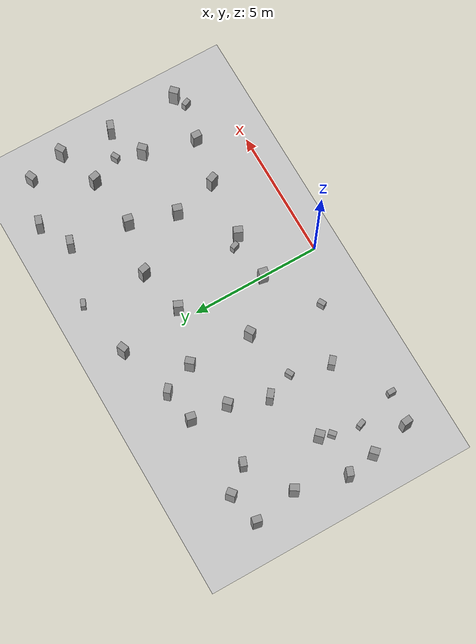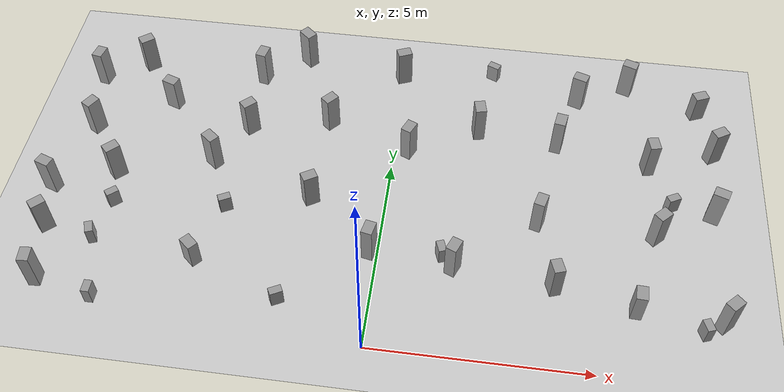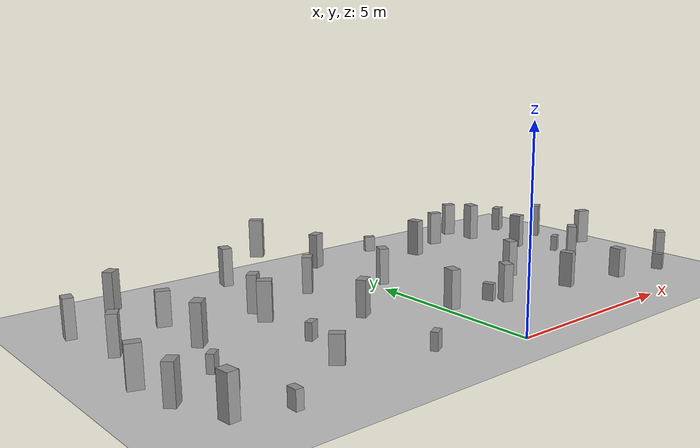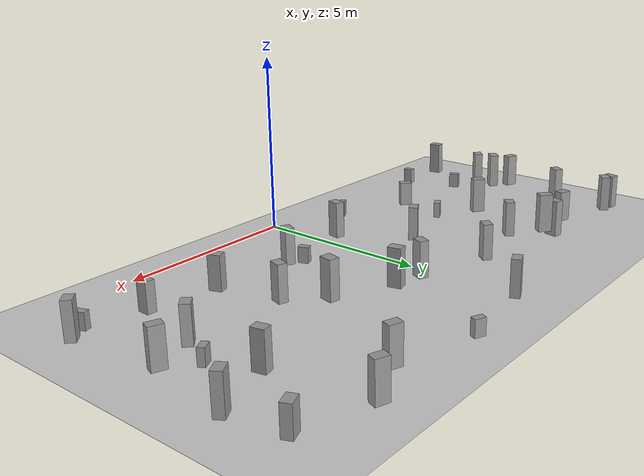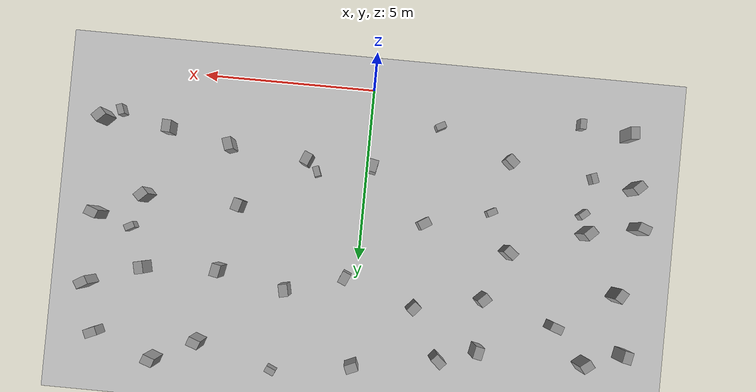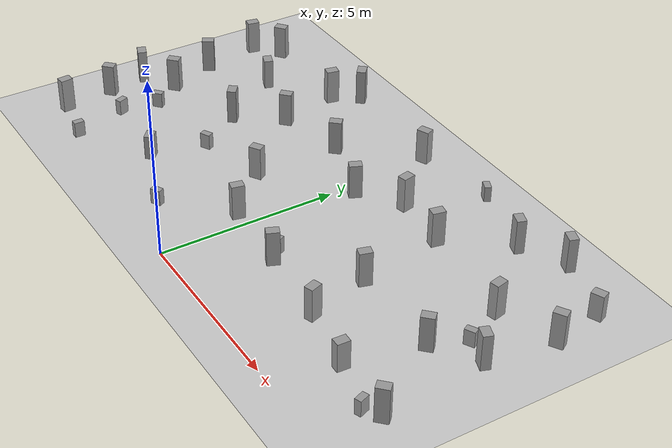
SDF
<sdf version="1.6">
 <world name="default">
  <model name="ground_plane">
   <static>1</static>
   <link name="link">
    <collision name="collision">
     <geometry><plane><normal>0 0 1</normal><size>100 100</size></plane></geometry>
     <surface><friction><ode><mu>100</mu><mu2>50</mu2></ode></friction></surface>
    </collision>
    <visual name="visual">
     <cast_shadows>0</cast_shadows>
     <geometry><plane><normal>0 0 1</normal><size>100 100</size></plane></geometry>
     <material>
      <script><uri>file://media/materials/scripts/gazebo.material</uri><name>Gazebo/Grey</name></script>
     </material>
    </visual>
   </link>
  </model>
  <model name="unit_box_0_clone_4">
   <pose>1.74493 2.24717 0.499999 -2e-06 3e-06 1.17541</pose>
   <link name="link">
    <inertial>
     <mass>1</mass>
     <inertia>
      <ixx>0.166667</ixx>
      <ixy>0</ixy>
      <ixz>0</ixz>
      <iyy>0.166667</iyy>
      <iyz>0</iyz>
      <izz>0.166667</izz>
     </inertia>
    </inertial>
    <collision name="collision"><geometry><box><size>0.350929 0.254556 1</size></box></geometry></collision>
    <visual name="visual">
     <geometry><box><size>0.350929 0.254556 1</size></box></geometry>
     <material>
      <script><name>Gazebo/Grey</name><uri>file://media/materials/scripts/gazebo.material</uri></script>
     </material>
    </visual>
   </link>
  </model>
  <model name="unit_box_0_clone_5">
   <pose>-0.154457 2.29719 0.710739 1e-06 3e-06 1.36916</pose>
   <link name="link">
    <inertial>
     <mass>1</mass>
     <inertia>
      <ixx>0.166667</ixx>
      <ixy>0</ixy>
      <ixz>0</ixz>
      <iyy>0.166667</iyy>
      <iyz>0</iyz>
      <izz>0.166667</izz>
     </inertia>
    </inertial>
    <collision name="collision"><geometry><box><size>0.350929 0.254556 1</size></box></geometry></collision>
    <visual name="visual">
     <geometry><box><size>0.350929 0.254556 1</size></box></geometry>
     <material>
      <script><name>Gazebo/Grey</name><uri>file://media/materials/scripts/gazebo.material</uri></script>
     </material>
    </visual>
   </link>
  </model>
  <model name="unit_box_0_clone_0_clone_clone_0">
   <pose>-4.13971 1.74605 0.191072 0 0 -0.719705</pose>
   <link name="link">
    <inertial>
     <mass>1</mass>
     <inertia>
      <ixx>0.166667</ixx>
      <ixy>0</ixy>
      <ixz>0</ixz>
      <iyy>0.166667</iyy>
      <iyz>0</iyz>
      <izz>0.166667</izz>
     </inertia>
    </inertial>
    <collision name="collision"><geometry><box><size>0.350929 0.254556 1</size></box></geometry></collision>
    <visual name="visual">
     <geometry><box><size>0.350929 0.254556 1</size></box></geometry>
     <material>
      <script><name>Gazebo/Grey</name><uri>file://media/materials/scripts/gazebo.material</uri></script>
     </material>
    </visual>
   </link>
  </model>
  <model name="unit_box_0_clone_0_clone_clone_1">
   <pose>4.00978 2.0365 0.438822 -2e-06 -3e-06 -1.24329</pose>
   <link name="link">
    <inertial>
     <mass>1</mass>
     <inertia>
      <ixx>0.166667</ixx>
      <ixy>0</ixy>
      <ixz>0</ixz>
      <iyy>0.166667</iyy>
      <iyz>0</iyz>
      <izz>0.166667</izz>
     </inertia>
    </inertial>
    <collision name="collision">
     <geometry><box><size>0.350929 0.254556 0.999999</size></box></geometry>
    </collision>
    <visual name="visual">
     <geometry><box><size>0.350929 0.254556 0.999999</size></box></geometry>
     <material>
      <script><name>Gazebo/Grey</name><uri>file://media/materials/scripts/gazebo.material</uri></script>
     </material>
    </visual>
   </link>
  </model>
  <model name="unit_box_0_clone_0_clone_clone_2">
   <pose>-4.22578 4.37238 0.775192 2e-06 3e-06 -0.670851</pose>
   <link name="link">
    <inertial>
     <mass>1</mass>
     <inertia>
      <ixx>0.166667</ixx>
      <ixy>0</ixy>
      <ixz>0</ixz>
      <iyy>0.166667</iyy>
      <iyz>0</iyz>
      <izz>0.166667</izz>
     </inertia>
    </inertial>
    <collision name="collision">
     <geometry><box><size>0.350929 0.254556 0.999997</size></box></geometry>
    </collision>
    <visual name="visual">
     <geometry><box><size>0.350929 0.254556 0.999997</size></box></geometry>
     <material>
      <script><name>Gazebo/Grey</name><uri>file://media/materials/scripts/gazebo.material</uri></script>
     </material>
    </visual>
   </link>
  </model>
  <model name="unit_box_0_clone_0_clone_clone_3">
   <pose>-1.77386 3.77306 0.447843 -1e-06 -4e-06 0.554942</pose>
   <link name="link">
    <inertial>
     <mass>1</mass>
     <inertia>
      <ixx>0.166667</ixx>
      <ixy>0</ixy>
      <ixz>0</ixz>
      <iyy>0.166667</iyy>
      <iyz>0</iyz>
      <izz>0.166667</izz>
     </inertia>
    </inertial>
    <collision name="collision"><geometry><box><size>0.350929 0.254556 1</size></box></geometry></collision>
    <visual name="visual">
     <geometry><box><size>0.350929 0.254556 1</size></box></geometry>
     <material>
      <script><name>Gazebo/Grey</name><uri>file://media/materials/scripts/gazebo.material</uri></script>
     </material>
    </visual>
   </link>
  </model>
  <model name="unit_box_0_clone_0_clone_clone_6">
   <pose>3.5862 3.74284 0.499999 -1e-06 3e-06 1.28738</pose>
   <link name="link">
    <inertial>
     <mass>1</mass>
     <inertia>
      <ixx>0.166667</ixx>
      <ixy>0</ixy>
      <ixz>0</ixz>
      <iyy>0.166667</iyy>
      <iyz>0</iyz>
      <izz>0.166667</izz>
     </inertia>
    </inertial>
    <collision name="collision"><geometry><box><size>0.350929 0.254556 1</size></box></geometry></collision>
    <visual name="visual">
     <geometry><box><size>0.350929 0.254556 1</size></box></geometry>
     <material>
      <script><name>Gazebo/Grey</name><uri>file://media/materials/scripts/gazebo.material</uri></script>
     </material>
    </visual>
   </link>
  </model>
  <model name="unit_box_0_clone_clone">
   <pose>5.82631 1.67893 0.299226 0 0 -1.61448</pose>
   <link name="link">
    <inertial>
     <mass>1</mass>
     <inertia>
      <ixx>0.166667</ixx>
      <ixy>0</ixy>
      <ixz>0</ixz>
      <iyy>0.166667</iyy>
      <iyz>0</iyz>
      <izz>0.166667</izz>
     </inertia>
    </inertial>
    <collision name="collision"><geometry><box><size>0.350929 0.254556 1</size></box></geometry></collision>
    <visual name="visual">
     <geometry><box><size>0.350929 0.254556 1</size></box></geometry>
     <material>
      <script><name>Gazebo/Grey</name><uri>file://media/materials/scripts/gazebo.material</uri></script>
     </material>
    </visual>
   </link>
  </model>
  <model name="unit_box_0_clone_7">
   <pose>6.31017 3.69227 0.5 1e-06 -2e-06 0.772458</pose>
   <link name="link">
    <inertial>
     <mass>1</mass>
     <inertia>
      <ixx>0.166667</ixx>
      <ixy>0</ixy>
      <ixz>0</ixz>
      <iyy>0.166667</iyy>
      <iyz>0</iyz>
      <izz>0.166667</izz>
     </inertia>
    </inertial>
    <collision name="collision"><geometry><box><size>0.350929 0.254556 1</size></box></geometry></collision>
    <visual name="visual">
     <geometry><box><size>0.350929 0.254556 1</size></box></geometry>
     <material>
      <script><name>Gazebo/Grey</name><uri>file://media/materials/scripts/gazebo.material</uri></script>
     </material>
    </visual>
   </link>
  </model>
  <model name="unit_box_0_clone_1_clone_0">
   <pose>6.17431 5.7763 0.499999 2e-06 3e-06 -1.3566</pose>
   <link name="link">
    <inertial>
     <mass>1</mass>
     <inertia>
      <ixx>0.166667</ixx>
      <ixy>0</ixy>
      <ixz>0</ixz>
      <iyy>0.166667</iyy>
      <iyz>0</iyz>
      <izz>0.166667</izz>
     </inertia>
    </inertial>
    <collision name="collision"><geometry><box><size>0.350929 0.254556 1</size></box></geometry></collision>
    <visual name="visual">
     <geometry><box><size>0.350929 0.254556 1</size></box></geometry>
     <material>
      <script><name>Gazebo/Grey</name><uri>file://media/materials/scripts/gazebo.material</uri></script>
     </material>
    </visual>
   </link>
  </model>
  <model name="unit_box_0_clone_5_clone">
   <pose>3.88686 5.60761 1.18406 0 1e-06 1.37806</pose>
   <link name="link">
    <inertial>
     <mass>1</mass>
     <inertia>
      <ixx>0.166667</ixx>
      <ixy>0</ixy>
      <ixz>0</ixz>
      <iyy>0.166667</iyy>
      <iyz>0</iyz>
      <izz>0.166667</izz>
     </inertia>
    </inertial>
    <collision name="collision">
     <geometry><box><size>0.350929 0.254555 0.999998</size></box></geometry>
    </collision>
    <visual name="visual">
     <geometry><box><size>0.350929 0.254555 0.999998</size></box></geometry>
     <material>
      <script><name>Gazebo/Grey</name><uri>file://media/materials/scripts/gazebo.material</uri></script>
     </material>
    </visual>
   </link>
  </model>
  <model name="unit_box_0_clone_1_clone_1">
   <pose>2 6 0.933987 1e-06 1e-06 -1.3579</pose>
   <link name="link">
    <inertial>
     <mass>1</mass>
     <inertia>
      <ixx>0.166667</ixx>
      <ixy>0</ixy>
      <ixz>0</ixz>
      <iyy>0.166667</iyy>
      <iyz>0</iyz>
      <izz>0.166667</izz>
     </inertia>
    </inertial>
    <collision name="collision">
     <geometry><box><size>0.350929 0.254556 0.999995</size></box></geometry>
    </collision>
    <visual name="visual">
     <geometry><box><size>0.350929 0.254556 0.999995</size></box></geometry>
     <material>
      <script><name>Gazebo/Grey</name><uri>file://media/materials/scripts/gazebo.material</uri></script>
     </material>
    </visual>
   </link>
  </model>
  <model name="unit_box_0_clone_0_clone_clone_10_clone">
   <pose>0.351698 5.53402 0.499999 2e-06 -2e-06 1.15939</pose>
   <link name="link">
    <inertial>
     <mass>1</mass>
     <inertia>
      <ixx>0.166667</ixx>
      <ixy>0</ixy>
      <ixz>0</ixz>
      <iyy>0.166667</iyy>
      <iyz>0</iyz>
      <izz>0.166667</izz>
     </inertia>
    </inertial>
    <collision name="collision"><geometry><box><size>0.350929 0.254556 1</size></box></geometry></collision>
    <visual name="visual">
     <geometry><box><size>0.350929 0.254556 1</size></box></geometry>
     <material>
      <script><name>Gazebo/Grey</name><uri>file://media/materials/scripts/gazebo.material</uri></script>
     </material>
    </visual>
   </link>
  </model>
  <model name="unit_box_0_clone_0_clone_clone_8_clone_0">
   <pose>-1.69658 6.20876 0.499999 2e-06 2e-06 0.8561</pose>
   <link name="link">
    <inertial>
     <mass>1</mass>
     <inertia>
      <ixx>0.166667</ixx>
      <ixy>0</ixy>
      <ixz>0</ixz>
      <iyy>0.166667</iyy>
      <iyz>0</iyz>
      <izz>0.166667</izz>
     </inertia>
    </inertial>
    <collision name="collision"><geometry><box><size>0.350929 0.254556 1</size></box></geometry></collision>
    <visual name="visual">
     <geometry><box><size>0.350929 0.254556 1</size></box></geometry>
     <material>
      <script><name>Gazebo/Grey</name><uri>file://media/materials/scripts/gazebo.material</uri></script>
     </material>
    </visual>
   </link>
  </model>
  <model name="unit_box_0_clone_0_clone_2">
   <pose>-3.65685 5.78149 0.499999 1e-06 -3e-06 0.766257</pose>
   <link name="link">
    <inertial>
     <mass>1</mass>
     <inertia>
      <ixx>0.166667</ixx>
      <ixy>0</ixy>
      <ixz>0</ixz>
      <iyy>0.166667</iyy>
      <iyz>0</iyz>
      <izz>0.166667</izz>
     </inertia>
    </inertial>
    <collision name="collision"><geometry><box><size>0.350929 0.254556 1</size></box></geometry></collision>
    <visual name="visual">
     <geometry><box><size>0.350929 0.254556 1</size></box></geometry>
     <material>
      <script><name>Gazebo/Grey</name><uri>file://media/materials/scripts/gazebo.material</uri></script>
     </material>
    </visual>
   </link>
  </model>
  <model name="unit_box_0_clone_0_clone_clone_15_clone">
   <pose>-5.79651 6.39287 0.375068 0 0 -0.344573</pose>
   <link name="link">
    <inertial>
     <mass>1</mass>
     <inertia>
      <ixx>0.166667</ixx>
      <ixy>0</ixy>
      <ixz>0</ixz>
      <iyy>0.166667</iyy>
      <iyz>0</iyz>
      <izz>0.166667</izz>
     </inertia>
    </inertial>
    <collision name="collision"><geometry><box><size>0.350929 0.254556 1</size></box></geometry></collision>
    <visual name="visual">
     <geometry><box><size>0.350929 0.254556 1</size></box></geometry>
     <material>
      <script><name>Gazebo/Grey</name><uri>file://media/materials/scripts/gazebo.material</uri></script>
     </material>
    </visual>
   </link>
  </model>
  <model name="unit_box_0_clone_8">
   <pose>-6.35865 3.62398 0.927907 0 1e-06 0.772416</pose>
   <link name="link">
    <inertial>
     <mass>1</mass>
     <inertia>
      <ixx>0.166667</ixx>
      <ixy>0</ixy>
      <ixz>0</ixz>
      <iyy>0.166667</iyy>
      <iyz>0</iyz>
      <izz>0.166667</izz>
     </inertia>
    </inertial>
    <collision name="collision">
     <geometry><box><size>0.350929 0.254556 0.999994</size></box></geometry>
    </collision>
    <visual name="visual">
     <geometry><box><size>0.350929 0.254556 0.999994</size></box></geometry>
     <material>
      <script><name>Gazebo/Grey</name><uri>file://media/materials/scripts/gazebo.material</uri></script>
     </material>
    </visual>
   </link>
  </model>
  <model name="unit_box_0_clone_3_clone">
   <pose>-7.42192 0.681468 0.6043 1e-06 2e-06 -1.47822</pose>
   <link name="link">
    <inertial>
     <mass>1</mass>
     <inertia>
      <ixx>0.166667</ixx>
      <ixy>0</ixy>
      <ixz>0</ixz>
      <iyy>0.166667</iyy>
      <iyz>0</iyz>
      <izz>0.166667</izz>
     </inertia>
    </inertial>
    <collision name="collision">
     <geometry><box><size>0.350929 0.254556 0.999999</size></box></geometry>
    </collision>
    <visual name="visual">
     <geometry><box><size>0.350929 0.254556 0.999999</size></box></geometry>
     <material>
      <script><name>Gazebo/Grey</name><uri>file://media/materials/scripts/gazebo.material</uri></script>
     </material>
    </visual>
   </link>
  </model>
  <model name="unit_box_0_clone_0_clone_3">
   <pose>-7.76367 2.19071 0.437348 2e-06 -1e-06 0.766305</pose>
   <link name="link">
    <inertial>
     <mass>1</mass>
     <inertia>
      <ixx>0.166667</ixx>
      <ixy>0</ixy>
      <ixz>0</ixz>
      <iyy>0.166667</iyy>
      <iyz>0</iyz>
      <izz>0.166667</izz>
     </inertia>
    </inertial>
    <collision name="collision">
     <geometry><box><size>0.350929 0.254556 0.999996</size></box></geometry>
    </collision>
    <visual name="visual">
     <geometry><box><size>0.350929 0.254556 0.999996</size></box></geometry>
     <material>
      <script><name>Gazebo/Grey</name><uri>file://media/materials/scripts/gazebo.material</uri></script>
     </material>
    </visual>
   </link>
  </model>
  <model name="unit_box_0_clone_0_clone_clone_17">
   <pose>-7.97831 3.34425 0.5 -1e-06 2e-06 -0.345034</pose>
   <link name="link">
    <inertial>
     <mass>1</mass>
     <inertia>
      <ixx>0.166667</ixx>
      <ixy>0</ixy>
      <ixz>0</ixz>
      <iyy>0.166667</iyy>
      <iyz>0</iyz>
      <izz>0.166667</izz>
     </inertia>
    </inertial>
    <collision name="collision"><geometry><box><size>0.350929 0.254556 1</size></box></geometry></collision>
    <visual name="visual">
     <geometry><box><size>0.350929 0.254556 1</size></box></geometry>
     <material>
      <script><name>Gazebo/Grey</name><uri>file://media/materials/scripts/gazebo.material</uri></script>
     </material>
    </visual>
   </link>
  </model>
  <model name="unit_box_0_clone_0_clone_1_clone">
   <pose>-7.50711 5.31027 0.5 0 -0 1.03403</pose>
   <link name="link">
    <inertial>
     <mass>1</mass>
     <inertia>
      <ixx>0.166667</ixx>
      <ixy>0</ixy>
      <ixz>0</ixz>
      <iyy>0.166667</iyy>
      <iyz>0</iyz>
      <izz>0.166667</izz>
     </inertia>
    </inertial>
    <collision name="collision"><geometry><box><size>0.350929 0.254556 1</size></box></geometry></collision>
    <visual name="visual">
     <geometry><box><size>0.350929 0.254556 1</size></box></geometry>
     <material>
      <script><name>Gazebo/Grey</name><uri>file://media/materials/scripts/gazebo.material</uri></script>
     </material>
    </visual>
   </link>
  </model>
  <model name="unit_box_0_clone_0_clone_clone_14_clone">
   <pose>-7.82756 7.01496 0.499999 1e-06 -3e-06 1.37056</pose>
   <link name="link">
    <inertial>
     <mass>1</mass>
     <inertia>
      <ixx>0.166667</ixx>
      <ixy>0</ixy>
      <ixz>0</ixz>
      <iyy>0.166667</iyy>
      <iyz>0</iyz>
      <izz>0.166667</izz>
     </inertia>
    </inertial>
    <collision name="collision"><geometry><box><size>0.350929 0.254556 1</size></box></geometry></collision>
    <visual name="visual">
     <geometry><box><size>0.350929 0.254556 1</size></box></geometry>
     <material>
      <script><name>Gazebo/Grey</name><uri>file://media/materials/scripts/gazebo.material</uri></script>
     </material>
    </visual>
   </link>
  </model>
  <model name="unit_box_0_clone_0_clone_clone_7_clone">
   <pose>-6.62042 7.33792 0.806612 0 1e-06 0.671549</pose>
   <link name="link">
    <inertial>
     <mass>1</mass>
     <inertia>
      <ixx>0.166667</ixx>
      <ixy>0</ixy>
      <ixz>0</ixz>
      <iyy>0.166667</iyy>
      <iyz>0</iyz>
      <izz>0.166667</izz>
     </inertia>
    </inertial>
    <collision name="collision">
     <geometry><box><size>0.350929 0.254556 0.999996</size></box></geometry>
    </collision>
    <visual name="visual">
     <geometry><box><size>0.350929 0.254556 0.999996</size></box></geometry>
     <material>
      <script><name>Gazebo/Grey</name><uri>file://media/materials/scripts/gazebo.material</uri></script>
     </material>
    </visual>
   </link>
  </model>
  <model name="unit_box_0_clone_5_clone_0">
   <pose>-3.56455 7.2296 0.857341 1e-06 -1e-06 1.36901</pose>
   <link name="link">
    <inertial>
     <mass>1</mass>
     <inertia>
      <ixx>0.166667</ixx>
      <ixy>0</ixy>
      <ixz>0</ixz>
      <iyy>0.166667</iyy>
      <iyz>0</iyz>
      <izz>0.166667</izz>
     </inertia>
    </inertial>
    <collision name="collision">
     <geometry><box><size>0.350929 0.254556 0.999996</size></box></geometry>
    </collision>
    <visual name="visual">
     <geometry><box><size>0.350929 0.254556 0.999996</size></box></geometry>
     <material>
      <script><name>Gazebo/Grey</name><uri>file://media/materials/scripts/gazebo.material</uri></script>
     </material>
    </visual>
   </link>
  </model>
  <model name="unit_box_0_clone_0_clone_clone_0_clone">
   <pose>-2.42166 7.49843 1.36787 0 0 -0.72113</pose>
   <link name="link">
    <inertial>
     <mass>1</mass>
     <inertia>
      <ixx>0.166667</ixx>
      <ixy>0</ixy>
      <ixz>0</ixz>
      <iyy>0.166667</iyy>
      <iyz>0</iyz>
      <izz>0.166667</izz>
     </inertia>
    </inertial>
    <collision name="collision"><geometry><box><size>0.350929 0.254556 1</size></box></geometry></collision>
    <visual name="visual">
     <geometry><box><size>0.350929 0.254556 1</size></box></geometry>
     <material>
      <script><name>Gazebo/Grey</name><uri>file://media/materials/scripts/gazebo.material</uri></script>
     </material>
    </visual>
   </link>
  </model>
  <model name="unit_box_0_clone_0_clone_clone_5_clone_clone">
   <pose>-0.07356 8.03968 0.499999 2e-06 2e-06 0.402669</pose>
   <link name="link">
    <inertial>
     <mass>1</mass>
     <inertia>
      <ixx>0.166667</ixx>
      <ixy>0</ixy>
      <ixz>0</ixz>
      <iyy>0.166667</iyy>
      <iyz>0</iyz>
      <izz>0.166667</izz>
     </inertia>
    </inertial>
    <collision name="collision"><geometry><box><size>0.350929 0.254556 1</size></box></geometry></collision>
    <visual name="visual">
     <geometry><box><size>0.350929 0.254556 1</size></box></geometry>
     <material>
      <script><name>Gazebo/Grey</name><uri>file://media/materials/scripts/gazebo.material</uri></script>
     </material>
    </visual>
   </link>
  </model>
  <model name="unit_box_0_clone_0_clone_clone_18">
   <pose>4.43224 7.75259 0.5 2e-06 -1e-06 -0.344872</pose>
   <link name="link">
    <inertial>
     <mass>1</mass>
     <inertia>
      <ixx>0.166667</ixx>
      <ixy>0</ixy>
      <ixz>0</ixz>
      <iyy>0.166667</iyy>
      <iyz>0</iyz>
      <izz>0.166667</izz>
     </inertia>
    </inertial>
    <collision name="collision"><geometry><box><size>0.350929 0.254556 1</size></box></geometry></collision>
    <visual name="visual">
     <geometry><box><size>0.350929 0.254556 1</size></box></geometry>
     <material>
      <script><name>Gazebo/Grey</name><uri>file://media/materials/scripts/gazebo.material</uri></script>
     </material>
    </visual>
   </link>
  </model>
  <model name="unit_box_0_clone_0_clone_clone_4_clone_0">
   <pose>5.67344 8.37154 0.499999 -1e-06 3e-06 -0.345164</pose>
   <link name="link">
    <inertial>
     <mass>1</mass>
     <inertia>
      <ixx>0.166667</ixx>
      <ixy>0</ixy>
      <ixz>0</ixz>
      <iyy>0.166667</iyy>
      <iyz>0</iyz>
      <izz>0.166667</izz>
     </inertia>
    </inertial>
    <collision name="collision"><geometry><box><size>0.350929 0.254556 1</size></box></geometry></collision>
    <visual name="visual">
     <geometry><box><size>0.350929 0.254556 1</size></box></geometry>
     <material>
      <script><name>Gazebo/Grey</name><uri>file://media/materials/scripts/gazebo.material</uri></script>
     </material>
    </visual>
   </link>
  </model>
  <model name="unit_box_0_clone_0_clone_clone_5_clone_clone_0">
   <pose>7.44447 7.76753 0.229191 0 -0 0.402547</pose>
   <link name="link">
    <inertial>
     <mass>1</mass>
     <inertia>
      <ixx>0.166667</ixx>
      <ixy>0</ixy>
      <ixz>0</ixz>
      <iyy>0.166667</iyy>
      <iyz>0</iyz>
      <izz>0.166667</izz>
     </inertia>
    </inertial>
    <collision name="collision"><geometry><box><size>0.350929 0.254556 1</size></box></geometry></collision>
    <visual name="visual">
     <geometry><box><size>0.350929 0.254556 1</size></box></geometry>
     <material>
      <script><name>Gazebo/Grey</name><uri>file://media/materials/scripts/gazebo.material</uri></script>
     </material>
    </visual>
   </link>
  </model>
  <model name="unit_box_0_clone_0_clone_clone_3_clone">
   <pose>7.75962 6.34133 0.499998 3e-06 -6e-06 0.543335</pose>
   <link name="link">
    <inertial>
     <mass>1</mass>
     <inertia>
      <ixx>0.166667</ixx>
      <ixy>0</ixy>
      <ixz>0</ixz>
      <iyy>0.166667</iyy>
      <iyz>0</iyz>
      <izz>0.166667</izz>
     </inertia>
    </inertial>
    <collision name="collision"><geometry><box><size>0.350929 0.254556 1</size></box></geometry></collision>
    <visual name="visual">
     <geometry><box><size>0.350929 0.254556 1</size></box></geometry>
     <material>
      <script><name>Gazebo/Grey</name><uri>file://media/materials/scripts/gazebo.material</uri></script>
     </material>
    </visual>
   </link>
  </model>
  <model name="unit_box_0_clone_0_clone_clone_4_clone_1">
   <pose>7.59611 4.32149 0.683859 2e-06 1e-06 -0.345315</pose>
   <link name="link">
    <inertial>
     <mass>1</mass>
     <inertia>
      <ixx>0.166667</ixx>
      <ixy>0</ixy>
      <ixz>0</ixz>
      <iyy>0.166667</iyy>
      <iyz>0</iyz>
      <izz>0.166667</izz>
     </inertia>
    </inertial>
    <collision name="collision"><geometry><box><size>0.350929 0.254557 1</size></box></geometry></collision>
    <visual name="visual">
     <geometry><box><size>0.350929 0.254557 1</size></box></geometry>
     <material>
      <script><name>Gazebo/Grey</name><uri>file://media/materials/scripts/gazebo.material</uri></script>
     </material>
    </visual>
   </link>
  </model>
  <model name="unit_box_0_clone_9">
   <pose>7.71213 1.55541 0.5 0 -0 0.772326</pose>
   <link name="link">
    <inertial>
     <mass>1</mass>
     <inertia>
      <ixx>0.166667</ixx>
      <ixy>0</ixy>
      <ixz>0</ixz>
      <iyy>0.166667</iyy>
      <iyz>0</iyz>
      <izz>0.166667</izz>
     </inertia>
    </inertial>
    <collision name="collision"><geometry><box><size>0.350929 0.254556 1</size></box></geometry></collision>
    <visual name="visual">
     <geometry><box><size>0.350929 0.254556 1</size></box></geometry>
     <material>
      <script><name>Gazebo/Grey</name><uri>file://media/materials/scripts/gazebo.material</uri></script>
     </material>
    </visual>
   </link>
  </model>
  <model name="unit_box_0_clone_1">
   <pose>-6.11917 0.459781 0.225675 0 0 -3.3e-05</pose>
   <link name="link">
    <inertial>
     <mass>1</mass>
     <inertia>
      <ixx>0.166667</ixx>
      <ixy>0</ixy>
      <ixz>0</ixz>
      <iyy>0.166667</iyy>
      <iyz>0</iyz>
      <izz>0.166667</izz>
     </inertia>
    </inertial>
    <collision name="collision"><geometry><box><size>0.184899 0.295122 0.45135</size></box></geometry></collision>
    <visual name="visual">
     <geometry><box><size>0.184899 0.295122 0.45135</size></box></geometry>
     <material>
      <script><name>Gazebo/Grey</name><uri>file://media/materials/scripts/gazebo.material</uri></script>
     </material>
    </visual>
   </link>
  </model>
  <model name="unit_box_0_clone_10">
   <pose>-6.38833 3.0707 0.225674 4e-06 -3e-06 -0.860701</pose>
   <link name="link">
    <inertial>
     <mass>1</mass>
     <inertia>
      <ixx>0.166667</ixx>
      <ixy>0</ixy>
      <ixz>0</ixz>
      <iyy>0.166667</iyy>
      <iyz>0</iyz>
      <izz>0.166667</izz>
     </inertia>
    </inertial>
    <collision name="collision"><geometry><box><size>0.184899 0.295122 0.45135</size></box></geometry></collision>
    <visual name="visual">
     <geometry><box><size>0.184899 0.295122 0.45135</size></box></geometry>
     <material>
      <script><name>Gazebo/Grey</name><uri>file://media/materials/scripts/gazebo.material</uri></script>
     </material>
    </visual>
   </link>
  </model>
  <model name="unit_box_0_clone_11">
   <pose>-3.72358 3.25975 0.225674 5e-06 -1e-06 -1.08221</pose>
   <link name="link">
    <inertial>
     <mass>1</mass>
     <inertia>
      <ixx>0.166667</ixx>
      <ixy>0</ixy>
      <ixz>0</ixz>
      <iyy>0.166667</iyy>
      <iyz>0</iyz>
      <izz>0.166667</izz>
     </inertia>
    </inertial>
    <collision name="collision"><geometry><box><size>0.184899 0.295122 0.45135</size></box></geometry></collision>
    <visual name="visual">
     <geometry><box><size>0.184899 0.295122 0.45135</size></box></geometry>
     <material>
      <script><name>Gazebo/Grey</name><uri>file://media/materials/scripts/gazebo.material</uri></script>
     </material>
    </visual>
   </link>
  </model>
  <model name="unit_box_0_clone_11_clone_0">
   <pose>6.70167 4.64157 0.225674 4e-06 -3e-06 -1.08213</pose>
   <link name="link">
    <inertial>
     <mass>1</mass>
     <inertia>
      <ixx>0.166667</ixx>
      <ixy>0</ixy>
      <ixz>0</ixz>
      <iyy>0.166667</iyy>
      <iyz>0</iyz>
      <izz>0.166667</izz>
     </inertia>
    </inertial>
    <collision name="collision"><geometry><box><size>0.184899 0.295122 0.45135</size></box></geometry></collision>
    <visual name="visual">
     <geometry><box><size>0.184899 0.295122 0.45135</size></box></geometry>
     <material>
      <script><name>Gazebo/Grey</name><uri>file://media/materials/scripts/gazebo.material</uri></script>
     </material>
    </visual>
   </link>
  </model>
  <model name="unit_box_0_clone_11_clone_2">
   <pose>-2.01835 0.909124 0.225675 -3e-06 -0 -1.08205</pose>
   <link name="link">
    <inertial>
     <mass>1</mass>
     <inertia>
      <ixx>0.166667</ixx>
      <ixy>0</ixy>
      <ixz>0</ixz>
      <iyy>0.166667</iyy>
      <iyz>0</iyz>
      <izz>0.166667</izz>
     </inertia>
    </inertial>
    <collision name="collision"><geometry><box><size>0.184899 0.295122 0.45135</size></box></geometry></collision>
    <visual name="visual">
     <geometry><box><size>0.184899 0.295122 0.45135</size></box></geometry>
     <material>
      <script><name>Gazebo/Grey</name><uri>file://media/materials/scripts/gazebo.material</uri></script>
     </material>
    </visual>
   </link>
  </model>
  <model name="unit_box_0_clone_11_clone_3_clone_0">
   <pose>2.25618 8.42365 0.225674 -5e-06 -2e-06 -1.98771</pose>
   <link name="link">
    <inertial>
     <mass>1</mass>
     <inertia>
      <ixx>0.166667</ixx>
      <ixy>0</ixy>
      <ixz>0</ixz>
      <iyy>0.166667</iyy>
      <iyz>0</iyz>
      <izz>0.166667</izz>
     </inertia>
    </inertial>
    <collision name="collision"><geometry><box><size>0.184899 0.295122 0.45135</size></box></geometry></collision>
    <visual name="visual">
     <geometry><box><size>0.184899 0.295122 0.45135</size></box></geometry>
     <material>
      <script><name>Gazebo/Grey</name><uri>file://media/materials/scripts/gazebo.material</uri></script>
     </material>
    </visual>
   </link>
  </model>
  <model name="unit_box_0_clone_11_clone_3_clone_2">
   <pose>1.45094 2.55291 0.225674 -4e-06 -4e-06 -2.78626</pose>
   <link name="link">
    <inertial>
     <mass>1</mass>
     <inertia>
      <ixx>0.166667</ixx>
      <ixy>0</ixy>
      <ixz>0</ixz>
      <iyy>0.166667</iyy>
      <iyz>0</iyz>
      <izz>0.166667</izz>
     </inertia>
    </inertial>
    <collision name="collision"><geometry><box><size>0.184899 0.295122 0.45135</size></box></geometry></collision>
    <visual name="visual">
     <geometry><box><size>0.184899 0.295122 0.45135</size></box></geometry>
     <material>
      <script><name>Gazebo/Grey</name><uri>file://media/materials/scripts/gazebo.material</uri></script>
     </material>
    </visual>
   </link>
  </model>
  <model name="unit_box_0_clone_11_clone_3_clone_2_clone">
   <pose>7.2839 1.29028 0.225674 4e-06 -3e-06 -2.78632</pose>
   <link name="link">
    <inertial>
     <mass>1</mass>
     <inertia>
      <ixx>0.166667</ixx>
      <ixy>0</ixy>
      <ixz>0</ixz>
      <iyy>0.166667</iyy>
      <iyz>0</iyz>
      <izz>0.166667</izz>
     </inertia>
    </inertial>
    <collision name="collision"><geometry><box><size>0.184899 0.295122 0.45135</size></box></geometry></collision>
    <visual name="visual">
     <geometry><box><size>0.184899 0.295122 0.45135</size></box></geometry>
     <material>
      <script><name>Gazebo/Grey</name><uri>file://media/materials/scripts/gazebo.material</uri></script>
     </material>
    </visual>
   </link>
  </model>
  <model name="unit_box_0_clone_11_clone_3_clone_2_clone_2">
   <pose>-6.58944 2.00234 0.225675 -1e-06 3e-06 -2.78636</pose>
   <link name="link">
    <inertial>
     <mass>1</mass>
     <inertia>
      <ixx>0.166667</ixx>
      <ixy>0</ixy>
      <ixz>0</ixz>
      <iyy>0.166667</iyy>
      <iyz>0</iyz>
      <izz>0.166667</izz>
     </inertia>
    </inertial>
    <collision name="collision"><geometry><box><size>0.184899 0.295122 0.45135</size></box></geometry></collision>
    <visual name="visual">
     <geometry><box><size>0.184899 0.295122 0.45135</size></box></geometry>
     <material>
      <script><name>Gazebo/Grey</name><uri>file://media/materials/scripts/gazebo.material</uri></script>
     </material>
    </visual>
   </link>
  </model>
 </world>
</sdf>
